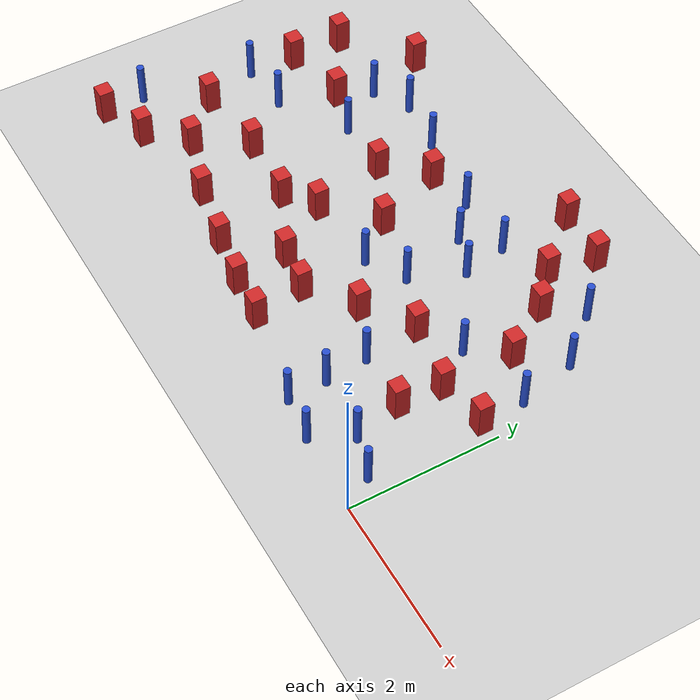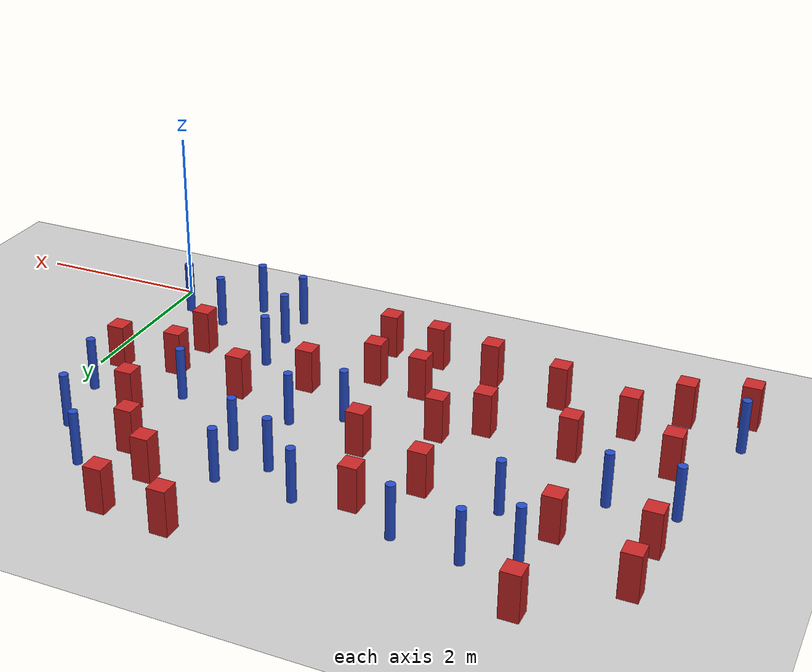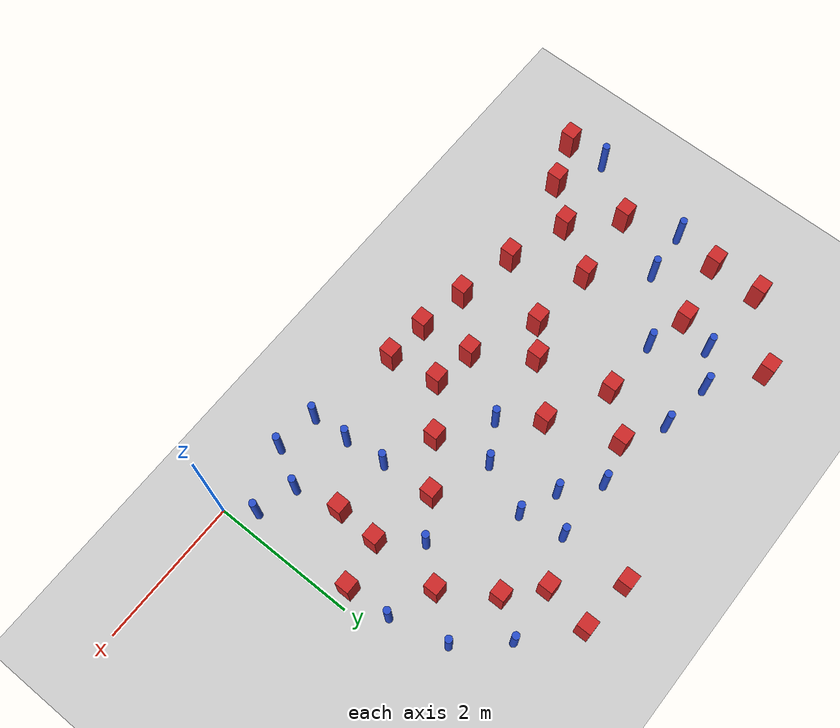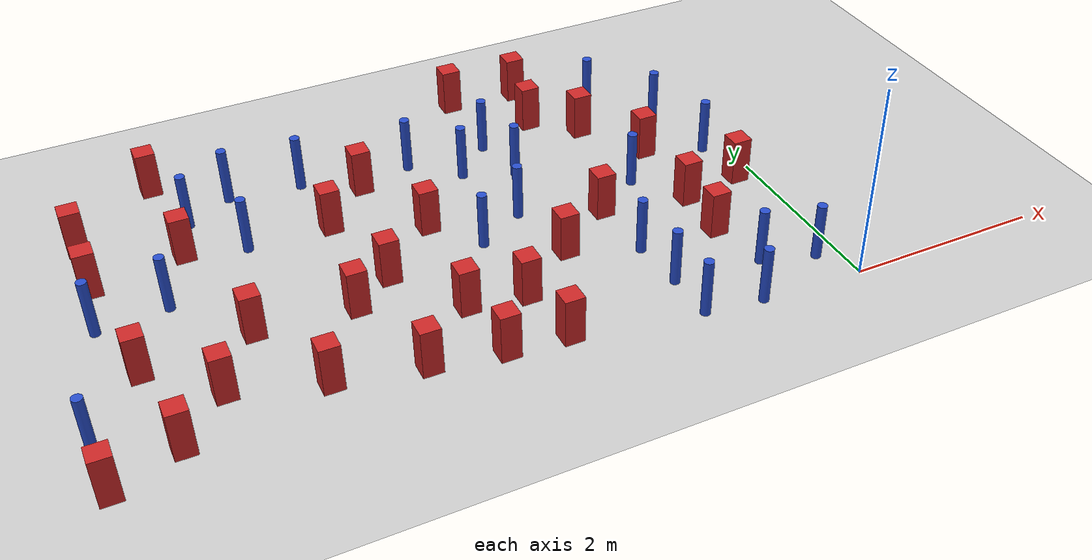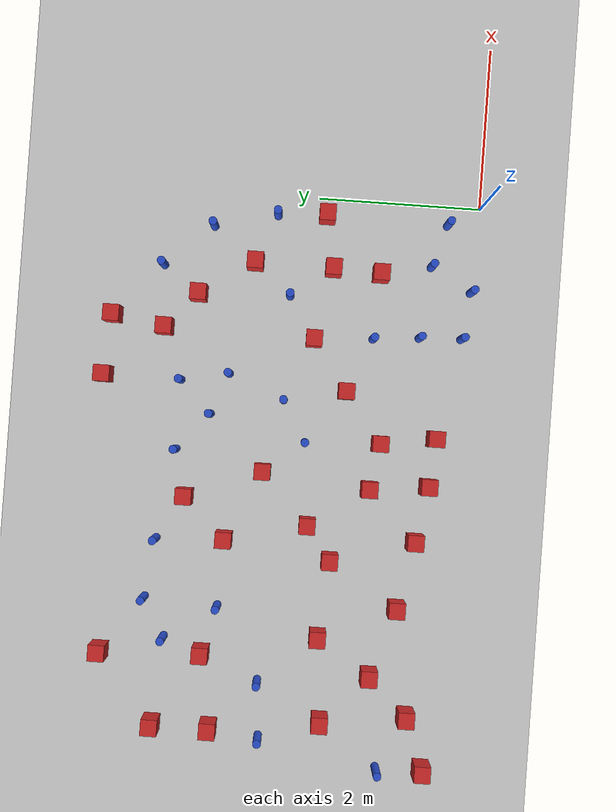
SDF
<sdf version="1.6">
 <world name="default">
  <model name="ground_plane">
   <static>1</static>
   <link name="link">
    <collision name="collision">
     <geometry><plane><normal>0 0 1</normal><size>100 100</size></plane></geometry>
     <surface><friction><ode><mu>100</mu><mu2>50</mu2></ode></friction></surface>
    </collision>
    <visual name="visual">
     <cast_shadows>0</cast_shadows>
     <geometry><plane><normal>0 0 1</normal><size>100 100</size></plane></geometry>
     <material>
      <ambient>1.0 1.0 1.0 1.0</ambient>
      <diffuse>0.8 0.8 0.8 1.0</diffuse>
      <specular>0.01 0.01 0.01 1.000000</specular>
     </material>
    </visual>
   </link>
  </model>
  <model name="pole_obstacle1">
   <static>true</static>
   <pose>-1.04630182989 0.051615101523 7.38925637345e-09 -8.47170692799e-08 1.24976765033e-08 -1.74513093019e-07</pose>
   <link name="link">
    <pose>0 0 0.3 0 -0 0</pose>
    <inertial>
     <mass>1</mass>
     <inertia><ixx>0.145833</ixx><ixy>0</ixy><ixz>0</ixz><iyy>0.145833</iyy><iyz>0</iyz><izz>0.125</izz></inertia>
    </inertial>
    <collision name="collision">
     <geometry><cylinder><radius>0.05</radius><length>.6</length></cylinder></geometry>
    </collision>
    <visual name="visual">
     <geometry><cylinder><radius>0.05</radius><length>.6</length></cylinder></geometry>
     <material>
      <script><name>Gazebo/Blue</name><uri>file://media/materials/scripts/gazebo.material</uri></script>
     </material>
    </visual>
   </link>
  </model>
  <model name="square_post_obstacle2">
   <static>true</static>
   <pose>-6.94276539703 0.270544642527 1.91545236811e-07 -7.35059704564e-06 1.12565212e-07 2.39332434364e-05</pose>
   <link name="link">
    <pose>0 0 0.25 0 -0 0</pose>
    <inertial>
     <mass>100</mass>
     <inertia>
      <ixx>0.166667</ixx>
      <ixy>0</ixy>
      <ixz>0</ixz>
      <iyy>0.166667</iyy>
      <iyz>0</iyz>
      <izz>0.166667</izz>
     </inertia>
    </inertial>
    <collision name="collision"><geometry><box><size>.2 .2 .5</size></box></geometry></collision>
    <visual name="visual">
     <geometry><box><size>.2 .2 .5</size></box></geometry>
     <material>
      <script><name>Gazebo/Red</name><uri>file://media/materials/scripts/gazebo.material</uri></script>
     </material>
    </visual>
   </link>
  </model>
  <model name="square_post_obstacle6">
   <static>true</static>
   <pose>-6.61166386584 3.61637795309 1.91545236811e-07 -7.35059704564e-06 1.12565212e-07 2.39332434364e-05</pose>
   <link name="link">
    <pose>0 0 0.25 0 -0 0</pose>
    <inertial>
     <mass>100</mass>
     <inertia>
      <ixx>0.166667</ixx>
      <ixy>0</ixy>
      <ixz>0</ixz>
      <iyy>0.166667</iyy>
      <iyz>0</iyz>
      <izz>0.166667</izz>
     </inertia>
    </inertial>
    <collision name="collision"><geometry><box><size>.2 .2 .5</size></box></geometry></collision>
    <visual name="visual">
     <geometry><box><size>.2 .2 .5</size></box></geometry>
     <material>
      <script><name>Gazebo/Red</name><uri>file://media/materials/scripts/gazebo.material</uri></script>
     </material>
    </visual>
   </link>
  </model>
  <model name="pole_obstacle9">
   <static>true</static>
   <pose>-4.34505185968 3.72447825318 7.38925637345e-09 -8.47170692798e-08 1.24976764937e-08 -1.74513093023e-07</pose>
   <link name="link">
    <pose>0 0 0.3 0 -0 0</pose>
    <inertial>
     <mass>1</mass>
     <inertia><ixx>0.145833</ixx><ixy>0</ixy><ixz>0</ixz><iyy>0.145833</iyy><iyz>0</iyz><izz>0.125</izz></inertia>
    </inertial>
    <collision name="collision">
     <geometry><cylinder><radius>0.05</radius><length>.6</length></cylinder></geometry>
    </collision>
    <visual name="visual">
     <geometry><cylinder><radius>0.05</radius><length>.6</length></cylinder></geometry>
     <material>
      <script><name>Gazebo/Blue</name><uri>file://media/materials/scripts/gazebo.material</uri></script>
     </material>
    </visual>
   </link>
  </model>
  <model name="pole_obstacle28">
   <static>true</static>
   <pose>-2.37183522931 3.55545364394 7.38925637345e-09 -8.47170692798e-08 1.24976764939e-08 -1.74513093025e-07</pose>
   <link name="link">
    <pose>0 0 0.3 0 -0 0</pose>
    <inertial>
     <mass>1</mass>
     <inertia><ixx>0.145833</ixx><ixy>0</ixy><ixz>0</ixz><iyy>0.145833</iyy><iyz>0</iyz><izz>0.125</izz></inertia>
    </inertial>
    <collision name="collision">
     <geometry><cylinder><radius>0.05</radius><length>.6</length></cylinder></geometry>
    </collision>
    <visual name="visual">
     <geometry><cylinder><radius>0.05</radius><length>.6</length></cylinder></geometry>
     <material>
      <script><name>Gazebo/Blue</name><uri>file://media/materials/scripts/gazebo.material</uri></script>
     </material>
    </visual>
   </link>
  </model>
  <model name="square_post_obstacle19">
   <static>true</static>
   <pose>-4.05131380726 1.87363192231 1.91545236811e-07 -7.35059704564e-06 1.12565212e-07 2.39332434364e-05</pose>
   <link name="link">
    <pose>0 0 0.25 0 -0 0</pose>
    <inertial>
     <mass>100</mass>
     <inertia>
      <ixx>0.166667</ixx>
      <ixy>0</ixy>
      <ixz>0</ixz>
      <iyy>0.166667</iyy>
      <iyz>0</iyz>
      <izz>0.166667</izz>
     </inertia>
    </inertial>
    <collision name="collision"><geometry><box><size>.2 .2 .5</size></box></geometry></collision>
    <visual name="visual">
     <geometry><box><size>.2 .2 .5</size></box></geometry>
     <material>
      <script><name>Gazebo/Red</name><uri>file://media/materials/scripts/gazebo.material</uri></script>
     </material>
    </visual>
   </link>
  </model>
  <model name="pole_obstacle29">
   <static>true</static>
   <pose>-0.762317307906 0.559949095743 7.38925637345e-09 -8.47170692799e-08 1.24976765008e-08 -1.7451309302e-07</pose>
   <link name="link">
    <pose>0 0 0.3 0 -0 0</pose>
    <inertial>
     <mass>1</mass>
     <inertia><ixx>0.145833</ixx><ixy>0</ixy><ixz>0</ixz><iyy>0.145833</iyy><iyz>0</iyz><izz>0.125</izz></inertia>
    </inertial>
    <collision name="collision">
     <geometry><cylinder><radius>0.05</radius><length>.6</length></cylinder></geometry>
    </collision>
    <visual name="visual">
     <geometry><cylinder><radius>0.05</radius><length>.6</length></cylinder></geometry>
     <material>
      <script><name>Gazebo/Blue</name><uri>file://media/materials/scripts/gazebo.material</uri></script>
     </material>
    </visual>
   </link>
  </model>
  <model name="square_post_obstacle35">
   <static>true</static>
   <pose>-4.16310749638 0.540213693424 1.91545236811e-07 -7.35059704564e-06 1.12565212e-07 2.39332434364e-05</pose>
   <link name="link">
    <pose>0 0 0.25 0 -0 0</pose>
    <inertial>
     <mass>100</mass>
     <inertia>
      <ixx>0.166667</ixx>
      <ixy>0</ixy>
      <ixz>0</ixz>
      <iyy>0.166667</iyy>
      <iyz>0</iyz>
      <izz>0.166667</izz>
     </inertia>
    </inertial>
    <collision name="collision"><geometry><box><size>.2 .2 .5</size></box></geometry></collision>
    <visual name="visual">
     <geometry><box><size>.2 .2 .5</size></box></geometry>
     <material>
      <script><name>Gazebo/Red</name><uri>file://media/materials/scripts/gazebo.material</uri></script>
     </material>
    </visual>
   </link>
  </model>
  <model name="pole_obstacle50">
   <static>true</static>
   <pose>-6.69125234079 2.29479315178 7.38925637345e-09 -8.47170692798e-08 1.24976764937e-08 -1.74513093023e-07</pose>
   <link name="link">
    <pose>0 0 0.3 0 -0 0</pose>
    <inertial>
     <mass>1</mass>
     <inertia><ixx>0.145833</ixx><ixy>0</ixy><ixz>0</ixz><iyy>0.145833</iyy><iyz>0</iyz><izz>0.125</izz></inertia>
    </inertial>
    <collision name="collision">
     <geometry><cylinder><radius>0.05</radius><length>.6</length></cylinder></geometry>
    </collision>
    <visual name="visual">
     <geometry><cylinder><radius>0.05</radius><length>.6</length></cylinder></geometry>
     <material>
      <script><name>Gazebo/Blue</name><uri>file://media/materials/scripts/gazebo.material</uri></script>
     </material>
    </visual>
   </link>
  </model>
  <model name="pole_obstacle51">
   <static>true</static>
   <pose>-1.7030006823 1.21912640064 7.38925637345e-09 -8.471706928e-08 1.24976765079e-08 -1.74513093017e-07</pose>
   <link name="link">
    <pose>0 0 0.3 0 -0 0</pose>
    <inertial>
     <mass>1</mass>
     <inertia><ixx>0.145833</ixx><ixy>0</ixy><ixz>0</ixz><iyy>0.145833</iyy><iyz>0</iyz><izz>0.125</izz></inertia>
    </inertial>
    <collision name="collision">
     <geometry><cylinder><radius>0.05</radius><length>.6</length></cylinder></geometry>
    </collision>
    <visual name="visual">
     <geometry><cylinder><radius>0.05</radius><length>.6</length></cylinder></geometry>
     <material>
      <script><name>Gazebo/Blue</name><uri>file://media/materials/scripts/gazebo.material</uri></script>
     </material>
    </visual>
   </link>
  </model>
  <model name="pole_obstacle52">
   <static>true</static>
   <pose>-2.76708867632 3.16369760751 7.38925637345e-09 -8.47170692798e-08 1.24976764939e-08 -1.74513093025e-07</pose>
   <link name="link">
    <pose>0 0 0.3 0 -0 0</pose>
    <inertial>
     <mass>1</mass>
     <inertia><ixx>0.145833</ixx><ixy>0</ixy><ixz>0</ixz><iyy>0.145833</iyy><iyz>0</iyz><izz>0.125</izz></inertia>
    </inertial>
    <collision name="collision">
     <geometry><cylinder><radius>0.05</radius><length>.6</length></cylinder></geometry>
    </collision>
    <visual name="visual">
     <geometry><cylinder><radius>0.05</radius><length>.6</length></cylinder></geometry>
     <material>
      <script><name>Gazebo/Blue</name><uri>file://media/materials/scripts/gazebo.material</uri></script>
     </material>
    </visual>
   </link>
  </model>
  <model name="square_post_obstacle42">
   <static>true</static>
   <pose>-5.75947830605 4.31798702861 1.91545236811e-07 -7.35059704564e-06 1.12565212e-07 2.39332434364e-05</pose>
   <link name="link">
    <pose>0 0 0.25 0 -0 0</pose>
    <inertial>
     <mass>100</mass>
     <inertia>
      <ixx>0.166667</ixx>
      <ixy>0</ixy>
      <ixz>0</ixz>
      <iyy>0.166667</iyy>
      <iyz>0</iyz>
      <izz>0.166667</izz>
     </inertia>
    </inertial>
    <collision name="collision"><geometry><box><size>.2 .2 .5</size></box></geometry></collision>
    <visual name="visual">
     <geometry><box><size>.2 .2 .5</size></box></geometry>
     <material>
      <script><name>Gazebo/Red</name><uri>file://media/materials/scripts/gazebo.material</uri></script>
     </material>
    </visual>
   </link>
  </model>
  <model name="square_post_obstacle44">
   <static>true</static>
   <pose>-1.62302480021 4.43921737696 1.91545236811e-07 -7.35059704564e-06 1.12565212e-07 2.39332434364e-05</pose>
   <link name="link">
    <pose>0 0 0.25 0 -0 0</pose>
    <inertial>
     <mass>100</mass>
     <inertia>
      <ixx>0.166667</ixx>
      <ixy>0</ixy>
      <ixz>0</ixz>
      <iyy>0.166667</iyy>
      <iyz>0</iyz>
      <izz>0.166667</izz>
     </inertia>
    </inertial>
    <collision name="collision"><geometry><box><size>.2 .2 .5</size></box></geometry></collision>
    <visual name="visual">
     <geometry><box><size>.2 .2 .5</size></box></geometry>
     <material>
      <script><name>Gazebo/Red</name><uri>file://media/materials/scripts/gazebo.material</uri></script>
     </material>
    </visual>
   </link>
  </model>
  <model name="square_post_obstacle52">
   <static>true</static>
   <pose>-2.88350521009 0.371397259413 1.91545236811e-07 -7.35059704564e-06 1.12565212e-07 2.39332434364e-05</pose>
   <link name="link">
    <pose>0 0 0.25 0 -0 0</pose>
    <inertial>
     <mass>100</mass>
     <inertia>
      <ixx>0.166667</ixx>
      <ixy>0</ixy>
      <ixz>0</ixz>
      <iyy>0.166667</iyy>
      <iyz>0</iyz>
      <izz>0.166667</izz>
     </inertia>
    </inertial>
    <collision name="collision"><geometry><box><size>.2 .2 .5</size></box></geometry></collision>
    <visual name="visual">
     <geometry><box><size>.2 .2 .5</size></box></geometry>
     <material>
      <script><name>Gazebo/Red</name><uri>file://media/materials/scripts/gazebo.material</uri></script>
     </material>
    </visual>
   </link>
  </model>
  <model name="square_post_obstacle56">
   <static>true</static>
   <pose>-6.44094989483 1.55565825258 1.91545236811e-07 -7.35059704564e-06 1.12565212e-07 2.39332434364e-05</pose>
   <link name="link">
    <pose>0 0 0.25 0 -0 0</pose>
    <inertial>
     <mass>100</mass>
     <inertia>
      <ixx>0.166667</ixx>
      <ixy>0</ixy>
      <ixz>0</ixz>
      <iyy>0.166667</iyy>
      <iyz>0</iyz>
      <izz>0.166667</izz>
     </inertia>
    </inertial>
    <collision name="collision"><geometry><box><size>.2 .2 .5</size></box></geometry></collision>
    <visual name="visual">
     <geometry><box><size>.2 .2 .5</size></box></geometry>
     <material>
      <script><name>Gazebo/Red</name><uri>file://media/materials/scripts/gazebo.material</uri></script>
     </material>
    </visual>
   </link>
  </model>
  <model name="pole_obstacle70">
   <static>true</static>
   <pose>-6.00756148825 2.3520266166 7.38925637345e-09 -8.47170692798e-08 1.24976764937e-08 -1.74513093023e-07</pose>
   <link name="link">
    <pose>0 0 0.3 0 -0 0</pose>
    <inertial>
     <mass>1</mass>
     <inertia><ixx>0.145833</ixx><ixy>0</ixy><ixz>0</ixz><iyy>0.145833</iyy><iyz>0</iyz><izz>0.125</izz></inertia>
    </inertial>
    <collision name="collision">
     <geometry><cylinder><radius>0.05</radius><length>.6</length></cylinder></geometry>
    </collision>
    <visual name="visual">
     <geometry><cylinder><radius>0.05</radius><length>.6</length></cylinder></geometry>
     <material>
      <script><name>Gazebo/Blue</name><uri>file://media/materials/scripts/gazebo.material</uri></script>
     </material>
    </visual>
   </link>
  </model>
  <model name="pole_obstacle80">
   <static>true</static>
   <pose>-3.2295053946 3.55683555406 7.38925637345e-09 -8.471706928e-08 1.24976765098e-08 -1.74513093016e-07</pose>
   <link name="link">
    <pose>0 0 0.3 0 -0 0</pose>
    <inertial>
     <mass>1</mass>
     <inertia><ixx>0.145833</ixx><ixy>0</ixy><ixz>0</ixz><iyy>0.145833</iyy><iyz>0</iyz><izz>0.125</izz></inertia>
    </inertial>
    <collision name="collision">
     <geometry><cylinder><radius>0.05</radius><length>.6</length></cylinder></geometry>
    </collision>
    <visual name="visual">
     <geometry><cylinder><radius>0.05</radius><length>.6</length></cylinder></geometry>
     <material>
      <script><name>Gazebo/Blue</name><uri>file://media/materials/scripts/gazebo.material</uri></script>
     </material>
    </visual>
   </link>
  </model>
  <model name="square_post_obstacle85">
   <static>true</static>
   <pose>-5.84357785571 0.991679537354 1.91545236811e-07 -7.35059704564e-06 1.12565212e-07 2.39332434364e-05</pose>
   <link name="link">
    <pose>0 0 0.25 0 -0 0</pose>
    <inertial>
     <mass>100</mass>
     <inertia>
      <ixx>0.166667</ixx>
      <ixy>0</ixy>
      <ixz>0</ixz>
      <iyy>0.166667</iyy>
      <iyz>0</iyz>
      <izz>0.166667</izz>
     </inertia>
    </inertial>
    <collision name="collision"><geometry><box><size>.2 .2 .5</size></box></geometry></collision>
    <visual name="visual">
     <geometry><box><size>.2 .2 .5</size></box></geometry>
     <material>
      <script><name>Gazebo/Red</name><uri>file://media/materials/scripts/gazebo.material</uri></script>
     </material>
    </visual>
   </link>
  </model>
  <model name="square_post_obstacle89">
   <static>true</static>
   <pose>-2.36697482412 4.50240781914 1.91545236811e-07 -7.35059704564e-06 1.12565212e-07 2.39332434364e-05</pose>
   <link name="link">
    <pose>0 0 0.25 0 -0 0</pose>
    <inertial>
     <mass>100</mass>
     <inertia>
      <ixx>0.166667</ixx>
      <ixy>0</ixy>
      <ixz>0</ixz>
      <iyy>0.166667</iyy>
      <iyz>0</iyz>
      <izz>0.166667</izz>
     </inertia>
    </inertial>
    <collision name="collision"><geometry><box><size>.2 .2 .5</size></box></geometry></collision>
    <visual name="visual">
     <geometry><box><size>.2 .2 .5</size></box></geometry>
     <material>
      <script><name>Gazebo/Red</name><uri>file://media/materials/scripts/gazebo.material</uri></script>
     </material>
    </visual>
   </link>
  </model>
  <model name="square_post_obstacle95">
   <static>true</static>
   <pose>-1.29212651685 3.40177244683 1.91545236811e-07 -7.35059704564e-06 1.12565212e-07 2.39332434364e-05</pose>
   <link name="link">
    <pose>0 0 0.25 0 -0 0</pose>
    <inertial>
     <mass>100</mass>
     <inertia>
      <ixx>0.166667</ixx>
      <ixy>0</ixy>
      <ixz>0</ixz>
      <iyy>0.166667</iyy>
      <iyz>0</iyz>
      <izz>0.166667</izz>
     </inertia>
    </inertial>
    <collision name="collision"><geometry><box><size>.2 .2 .5</size></box></geometry></collision>
    <visual name="visual">
     <geometry><box><size>.2 .2 .5</size></box></geometry>
     <material>
      <script><name>Gazebo/Red</name><uri>file://media/materials/scripts/gazebo.material</uri></script>
     </material>
    </visual>
   </link>
  </model>
  <model name="square_post_obstacle100">
   <static>true</static>
   <pose>-2.98975343674 1.04892976474 1.91545236811e-07 -7.35059704564e-06 1.12565212e-07 2.39332434364e-05</pose>
   <link name="link">
    <pose>0 0 0.25 0 -0 0</pose>
    <inertial>
     <mass>100</mass>
     <inertia>
      <ixx>0.166667</ixx>
      <ixy>0</ixy>
      <ixz>0</ixz>
      <iyy>0.166667</iyy>
      <iyz>0</iyz>
      <izz>0.166667</izz>
     </inertia>
    </inertial>
    <collision name="collision"><geometry><box><size>.2 .2 .5</size></box></geometry></collision>
    <visual name="visual">
     <geometry><box><size>.2 .2 .5</size></box></geometry>
     <material>
      <script><name>Gazebo/Red</name><uri>file://media/materials/scripts/gazebo.material</uri></script>
     </material>
    </visual>
   </link>
  </model>
  <model name="pole_obstacle106">
   <static>true</static>
   <pose>-1.62884620674 0.129775238204 7.38925637345e-09 -8.471706928e-08 1.24976765118e-08 -1.74513093013e-07</pose>
   <link name="link">
    <pose>0 0 0.3 0 -0 0</pose>
    <inertial>
     <mass>1</mass>
     <inertia><ixx>0.145833</ixx><ixy>0</ixy><ixz>0</ixz><iyy>0.145833</iyy><iyz>0</iyz><izz>0.125</izz></inertia>
    </inertial>
    <collision name="collision">
     <geometry><cylinder><radius>0.05</radius><length>.6</length></cylinder></geometry>
    </collision>
    <visual name="visual">
     <geometry><cylinder><radius>0.05</radius><length>.6</length></cylinder></geometry>
     <material>
      <script><name>Gazebo/Blue</name><uri>file://media/materials/scripts/gazebo.material</uri></script>
     </material>
    </visual>
   </link>
  </model>
  <model name="pole_obstacle107">
   <static>true</static>
   <pose>-5.12203296914 2.90994777958 7.38925637345e-09 -8.47170692798e-08 1.24976764937e-08 -1.74513093023e-07</pose>
   <link name="link">
    <pose>0 0 0.3 0 -0 0</pose>
    <inertial>
     <mass>1</mass>
     <inertia><ixx>0.145833</ixx><ixy>0</ixy><ixz>0</ixz><iyy>0.145833</iyy><iyz>0</iyz><izz>0.125</izz></inertia>
    </inertial>
    <collision name="collision">
     <geometry><cylinder><radius>0.05</radius><length>.6</length></cylinder></geometry>
    </collision>
    <visual name="visual">
     <geometry><cylinder><radius>0.05</radius><length>.6</length></cylinder></geometry>
     <material>
      <script><name>Gazebo/Blue</name><uri>file://media/materials/scripts/gazebo.material</uri></script>
     </material>
    </visual>
   </link>
  </model>
  <model name="square_post_obstacle104">
   <static>true</static>
   <pose>-0.218262979756 1.88934912733 1.91545236811e-07 -7.35059704564e-06 1.12565212e-07 2.39332434364e-05</pose>
   <link name="link">
    <pose>0 0 0.25 0 -0 0</pose>
    <inertial>
     <mass>100</mass>
     <inertia>
      <ixx>0.166667</ixx>
      <ixy>0</ixy>
      <ixz>0</ixz>
      <iyy>0.166667</iyy>
      <iyz>0</iyz>
      <izz>0.166667</izz>
     </inertia>
    </inertial>
    <collision name="collision"><geometry><box><size>.2 .2 .5</size></box></geometry></collision>
    <visual name="visual">
     <geometry><box><size>.2 .2 .5</size></box></geometry>
     <material>
      <script><name>Gazebo/Red</name><uri>file://media/materials/scripts/gazebo.material</uri></script>
     </material>
    </visual>
   </link>
  </model>
  <model name="square_post_obstacle108">
   <static>true</static>
   <pose>-1.73175008908 3.79279733086 1.91545236811e-07 -7.35059704564e-06 1.12565212e-07 2.39332434364e-05</pose>
   <link name="link">
    <pose>0 0 0.25 0 -0 0</pose>
    <inertial>
     <mass>100</mass>
     <inertia>
      <ixx>0.166667</ixx>
      <ixy>0</ixy>
      <ixz>0</ixz>
      <iyy>0.166667</iyy>
      <iyz>0</iyz>
      <izz>0.166667</izz>
     </inertia>
    </inertial>
    <collision name="collision"><geometry><box><size>.2 .2 .5</size></box></geometry></collision>
    <visual name="visual">
     <geometry><box><size>.2 .2 .5</size></box></geometry>
     <material>
      <script><name>Gazebo/Red</name><uri>file://media/materials/scripts/gazebo.material</uri></script>
     </material>
    </visual>
   </link>
  </model>
  <model name="square_post_obstacle111">
   <static>true</static>
   <pose>-6.30784242431 0.508064076074 1.91545236811e-07 -7.35059704564e-06 1.12565212e-07 2.39332434364e-05</pose>
   <link name="link">
    <pose>0 0 0.25 0 -0 0</pose>
    <inertial>
     <mass>100</mass>
     <inertia>
      <ixx>0.166667</ixx>
      <ixy>0</ixy>
      <ixz>0</ixz>
      <iyy>0.166667</iyy>
      <iyz>0</iyz>
      <izz>0.166667</izz>
     </inertia>
    </inertial>
    <collision name="collision"><geometry><box><size>.2 .2 .5</size></box></geometry></collision>
    <visual name="visual">
     <geometry><box><size>.2 .2 .5</size></box></geometry>
     <material>
      <script><name>Gazebo/Red</name><uri>file://media/materials/scripts/gazebo.material</uri></script>
     </material>
    </visual>
   </link>
  </model>
  <model name="pole_obstacle116">
   <static>true</static>
   <pose>-0.250553725688 2.49704803845 7.38925637345e-09 -8.471706928e-08 1.24976765139e-08 -1.74513093014e-07</pose>
   <link name="link">
    <pose>0 0 0.3 0 -0 0</pose>
    <inertial>
     <mass>1</mass>
     <inertia><ixx>0.145833</ixx><ixy>0</ixy><ixz>0</ixz><iyy>0.145833</iyy><iyz>0</iyz><izz>0.125</izz></inertia>
    </inertial>
    <collision name="collision">
     <geometry><cylinder><radius>0.05</radius><length>.6</length></cylinder></geometry>
    </collision>
    <visual name="visual">
     <geometry><cylinder><radius>0.05</radius><length>.6</length></cylinder></geometry>
     <material>
      <script><name>Gazebo/Blue</name><uri>file://media/materials/scripts/gazebo.material</uri></script>
     </material>
    </visual>
   </link>
  </model>
  <model name="square_post_obstacle116">
   <static>true</static>
   <pose>-1.75706093148 1.94662354061 1.91545236811e-07 -7.35059704564e-06 1.12565212e-07 2.39332434364e-05</pose>
   <link name="link">
    <pose>0 0 0.25 0 -0 0</pose>
    <inertial>
     <mass>100</mass>
     <inertia>
      <ixx>0.166667</ixx>
      <ixy>0</ixy>
      <ixz>0</ixz>
      <iyy>0.166667</iyy>
      <iyz>0</iyz>
      <izz>0.166667</izz>
     </inertia>
    </inertial>
    <collision name="collision"><geometry><box><size>.2 .2 .5</size></box></geometry></collision>
    <visual name="visual">
     <geometry><box><size>.2 .2 .5</size></box></geometry>
     <material>
      <script><name>Gazebo/Red</name><uri>file://media/materials/scripts/gazebo.material</uri></script>
     </material>
    </visual>
   </link>
  </model>
  <model name="square_post_obstacle119">
   <static>true</static>
   <pose>-4.46557902117 1.56936499345 1.91545236811e-07 -7.35059704564e-06 1.12565212e-07 2.39332434364e-05</pose>
   <link name="link">
    <pose>0 0 0.25 0 -0 0</pose>
    <inertial>
     <mass>100</mass>
     <inertia>
      <ixx>0.166667</ixx>
      <ixy>0</ixy>
      <ixz>0</ixz>
      <iyy>0.166667</iyy>
      <iyz>0</iyz>
      <izz>0.166667</izz>
     </inertia>
    </inertial>
    <collision name="collision"><geometry><box><size>.2 .2 .5</size></box></geometry></collision>
    <visual name="visual">
     <geometry><box><size>.2 .2 .5</size></box></geometry>
     <material>
      <script><name>Gazebo/Red</name><uri>file://media/materials/scripts/gazebo.material</uri></script>
     </material>
    </visual>
   </link>
  </model>
  <model name="pole_obstacle123">
   <static>true</static>
   <pose>-0.231956713623 0.392224656898 7.38925637345e-09 -8.47170692799e-08 1.2497676501e-08 -1.74513093019e-07</pose>
   <link name="link">
    <pose>0 0 0.3 0 -0 0</pose>
    <inertial>
     <mass>1</mass>
     <inertia><ixx>0.145833</ixx><ixy>0</ixy><ixz>0</ixz><iyy>0.145833</iyy><iyz>0</iyz><izz>0.125</izz></inertia>
    </inertial>
    <collision name="collision">
     <geometry><cylinder><radius>0.05</radius><length>.6</length></cylinder></geometry>
    </collision>
    <visual name="visual">
     <geometry><cylinder><radius>0.05</radius><length>.6</length></cylinder></geometry>
     <material>
      <script><name>Gazebo/Blue</name><uri>file://media/materials/scripts/gazebo.material</uri></script>
     </material>
    </visual>
   </link>
  </model>
  <model name="square_post_obstacle123">
   <static>true</static>
   <pose>-4.99594292737 0.711426656936 1.91545236811e-07 -7.35059704564e-06 1.12565212e-07 2.39332434364e-05</pose>
   <link name="link">
    <pose>0 0 0.25 0 -0 0</pose>
    <inertial>
     <mass>100</mass>
     <inertia>
      <ixx>0.166667</ixx>
      <ixy>0</ixy>
      <ixz>0</ixz>
      <iyy>0.166667</iyy>
      <iyz>0</iyz>
      <izz>0.166667</izz>
     </inertia>
    </inertial>
    <collision name="collision"><geometry><box><size>.2 .2 .5</size></box></geometry></collision>
    <visual name="visual">
     <geometry><box><size>.2 .2 .5</size></box></geometry>
     <material>
      <script><name>Gazebo/Red</name><uri>file://media/materials/scripts/gazebo.material</uri></script>
     </material>
    </visual>
   </link>
  </model>
  <model name="pole_obstacle131">
   <static>true</static>
   <pose>-1.24196176116 2.27932700327 7.38925637345e-09 -8.47170692799e-08 1.24976765053e-08 -1.74513093017e-07</pose>
   <link name="link">
    <pose>0 0 0.3 0 -0 0</pose>
    <inertial>
     <mass>1</mass>
     <inertia><ixx>0.145833</ixx><ixy>0</ixy><ixz>0</ixz><iyy>0.145833</iyy><iyz>0</iyz><izz>0.125</izz></inertia>
    </inertial>
    <collision name="collision">
     <geometry><cylinder><radius>0.05</radius><length>.6</length></cylinder></geometry>
    </collision>
    <visual name="visual">
     <geometry><cylinder><radius>0.05</radius><length>.6</length></cylinder></geometry>
     <material>
      <script><name>Gazebo/Blue</name><uri>file://media/materials/scripts/gazebo.material</uri></script>
     </material>
    </visual>
   </link>
  </model>
  <model name="square_post_obstacle133">
   <static>true</static>
   <pose>-3.43023822081 2.4659743951 1.91545236811e-07 -7.35059704564e-06 1.12565212e-07 2.39332434364e-05</pose>
   <link name="link">
    <pose>0 0 0.25 0 -0 0</pose>
    <inertial>
     <mass>100</mass>
     <inertia>
      <ixx>0.166667</ixx>
      <ixy>0</ixy>
      <ixz>0</ixz>
      <iyy>0.166667</iyy>
      <iyz>0</iyz>
      <izz>0.166667</izz>
     </inertia>
    </inertial>
    <collision name="collision"><geometry><box><size>.2 .2 .5</size></box></geometry></collision>
    <visual name="visual">
     <geometry><box><size>.2 .2 .5</size></box></geometry>
     <material>
      <script><name>Gazebo/Red</name><uri>file://media/materials/scripts/gazebo.material</uri></script>
     </material>
    </visual>
   </link>
  </model>
  <model name="pole_obstacle140">
   <static>true</static>
   <pose>-0.961970307962 3.86276042457 7.38925637345e-09 -8.47170692799e-08 1.24976765063e-08 -1.74513093018e-07</pose>
   <link name="link">
    <pose>0 0 0.3 0 -0 0</pose>
    <inertial>
     <mass>1</mass>
     <inertia><ixx>0.145833</ixx><ixy>0</ixy><ixz>0</ixz><iyy>0.145833</iyy><iyz>0</iyz><izz>0.125</izz></inertia>
    </inertial>
    <collision name="collision">
     <geometry><cylinder><radius>0.05</radius><length>.6</length></cylinder></geometry>
    </collision>
    <visual name="visual">
     <geometry><cylinder><radius>0.05</radius><length>.6</length></cylinder></geometry>
     <material>
      <script><name>Gazebo/Blue</name><uri>file://media/materials/scripts/gazebo.material</uri></script>
     </material>
    </visual>
   </link>
  </model>
  <model name="pole_obstacle157">
   <static>true</static>
   <pose>-5.07594089207 3.81675767567 7.38925637345e-09 -8.47170692798e-08 1.24976764937e-08 -1.74513093023e-07</pose>
   <link name="link">
    <pose>0 0 0.3 0 -0 0</pose>
    <inertial>
     <mass>1</mass>
     <inertia><ixx>0.145833</ixx><ixy>0</ixy><ixz>0</ixz><iyy>0.145833</iyy><iyz>0</iyz><izz>0.125</izz></inertia>
    </inertial>
    <collision name="collision">
     <geometry><cylinder><radius>0.05</radius><length>.6</length></cylinder></geometry>
    </collision>
    <visual name="visual">
     <geometry><cylinder><radius>0.05</radius><length>.6</length></cylinder></geometry>
     <material>
      <script><name>Gazebo/Blue</name><uri>file://media/materials/scripts/gazebo.material</uri></script>
     </material>
    </visual>
   </link>
  </model>
  <model name="square_post_obstacle154">
   <static>true</static>
   <pose>-0.898571257009 1.18044336672 1.91545236811e-07 -7.35059704564e-06 1.12565212e-07 2.39332434364e-05</pose>
   <link name="link">
    <pose>0 0 0.25 0 -0 0</pose>
    <inertial>
     <mass>100</mass>
     <inertia>
      <ixx>0.166667</ixx>
      <ixy>0</ixy>
      <ixz>0</ixz>
      <iyy>0.166667</iyy>
      <iyz>0</iyz>
      <izz>0.166667</izz>
     </inertia>
    </inertial>
    <collision name="collision"><geometry><box><size>.2 .2 .5</size></box></geometry></collision>
    <visual name="visual">
     <geometry><box><size>.2 .2 .5</size></box></geometry>
     <material>
      <script><name>Gazebo/Red</name><uri>file://media/materials/scripts/gazebo.material</uri></script>
     </material>
    </visual>
   </link>
  </model>
  <model name="square_post_obstacle155">
   <static>true</static>
   <pose>-0.859307264421 2.7324088987 1.91545236811e-07 -7.35059704564e-06 1.12565212e-07 2.39332434364e-05</pose>
   <link name="link">
    <pose>0 0 0.25 0 -0 0</pose>
    <inertial>
     <mass>100</mass>
     <inertia>
      <ixx>0.166667</ixx>
      <ixy>0</ixy>
      <ixz>0</ixz>
      <iyy>0.166667</iyy>
      <iyz>0</iyz>
      <izz>0.166667</izz>
     </inertia>
    </inertial>
    <collision name="collision"><geometry><box><size>.2 .2 .5</size></box></geometry></collision>
    <visual name="visual">
     <geometry><box><size>.2 .2 .5</size></box></geometry>
     <material>
      <script><name>Gazebo/Red</name><uri>file://media/materials/scripts/gazebo.material</uri></script>
     </material>
    </visual>
   </link>
  </model>
  <model name="pole_obstacle170">
   <static>true</static>
   <pose>-6.97745602016 0.822523043527 7.38925637345e-09 -8.47170692799e-08 1.24976765038e-08 -1.74513093018e-07</pose>
   <link name="link">
    <pose>0 0 0.3 0 -0 0</pose>
    <inertial>
     <mass>1</mass>
     <inertia><ixx>0.145833</ixx><ixy>0</ixy><ixz>0</ixz><iyy>0.145833</iyy><iyz>0</iyz><izz>0.125</izz></inertia>
    </inertial>
    <collision name="collision">
     <geometry><cylinder><radius>0.05</radius><length>.6</length></cylinder></geometry>
    </collision>
    <visual name="visual">
     <geometry><cylinder><radius>0.05</radius><length>.6</length></cylinder></geometry>
     <material>
      <script><name>Gazebo/Blue</name><uri>file://media/materials/scripts/gazebo.material</uri></script>
     </material>
    </visual>
   </link>
  </model>
  <model name="pole_obstacle174">
   <static>true</static>
   <pose>-2.53503560494 2.26921923058 7.38925637345e-09 -8.47170692798e-08 1.24976764939e-08 -1.74513093025e-07</pose>
   <link name="link">
    <pose>0 0 0.3 0 -0 0</pose>
    <inertial>
     <mass>1</mass>
     <inertia><ixx>0.145833</ixx><ixy>0</ixy><ixz>0</ixz><iyy>0.145833</iyy><iyz>0</iyz><izz>0.125</izz></inertia>
    </inertial>
    <collision name="collision">
     <geometry><cylinder><radius>0.05</radius><length>.6</length></cylinder></geometry>
    </collision>
    <visual name="visual">
     <geometry><cylinder><radius>0.05</radius><length>.6</length></cylinder></geometry>
     <material>
      <script><name>Gazebo/Blue</name><uri>file://media/materials/scripts/gazebo.material</uri></script>
     </material>
    </visual>
   </link>
  </model>
  <model name="square_post_obstacle172">
   <static>true</static>
   <pose>-3.55770509033 1.14337831809 1.91545236811e-07 -7.35059704564e-06 1.12565212e-07 2.39332434364e-05</pose>
   <link name="link">
    <pose>0 0 0.25 0 -0 0</pose>
    <inertial>
     <mass>100</mass>
     <inertia>
      <ixx>0.166667</ixx>
      <ixy>0</ixy>
      <ixz>0</ixz>
      <iyy>0.166667</iyy>
      <iyz>0</iyz>
      <izz>0.166667</izz>
     </inertia>
    </inertial>
    <collision name="collision"><geometry><box><size>.2 .2 .5</size></box></geometry></collision>
    <visual name="visual">
     <geometry><box><size>.2 .2 .5</size></box></geometry>
     <material>
      <script><name>Gazebo/Red</name><uri>file://media/materials/scripts/gazebo.material</uri></script>
     </material>
    </visual>
   </link>
  </model>
  <model name="pole_obstacle178">
   <static>true</static>
   <pose>-2.25515517741 2.96220189587 7.38925637345e-09 -8.47170692798e-08 1.24976764939e-08 -1.74513093025e-07</pose>
   <link name="link">
    <pose>0 0 0.3 0 -0 0</pose>
    <inertial>
     <mass>1</mass>
     <inertia><ixx>0.145833</ixx><ixy>0</ixy><ixz>0</ixz><iyy>0.145833</iyy><iyz>0</iyz><izz>0.125</izz></inertia>
    </inertial>
    <collision name="collision">
     <geometry><cylinder><radius>0.05</radius><length>.6</length></cylinder></geometry>
    </collision>
    <visual name="visual">
     <geometry><cylinder><radius>0.05</radius><length>.6</length></cylinder></geometry>
     <material>
      <script><name>Gazebo/Blue</name><uri>file://media/materials/scripts/gazebo.material</uri></script>
     </material>
    </visual>
   </link>
  </model>
  <model name="square_post_obstacle175">
   <static>true</static>
   <pose>-5.70594965453 3.06740156743 1.91545236811e-07 -7.35059704564e-06 1.12565212e-07 2.39332434364e-05</pose>
   <link name="link">
    <pose>0 0 0.25 0 -0 0</pose>
    <inertial>
     <mass>100</mass>
     <inertia>
      <ixx>0.166667</ixx>
      <ixy>0</ixy>
      <ixz>0</ixz>
      <iyy>0.166667</iyy>
      <iyz>0</iyz>
      <izz>0.166667</izz>
     </inertia>
    </inertial>
    <collision name="collision"><geometry><box><size>.2 .2 .5</size></box></geometry></collision>
    <visual name="visual">
     <geometry><box><size>.2 .2 .5</size></box></geometry>
     <material>
      <script><name>Gazebo/Red</name><uri>file://media/materials/scripts/gazebo.material</uri></script>
     </material>
    </visual>
   </link>
  </model>
  <model name="square_post_obstacle187">
   <static>true</static>
   <pose>-3.79685514548 3.40326851612 1.91545236811e-07 -7.35059704564e-06 1.12565212e-07 2.39332434364e-05</pose>
   <link name="link">
    <pose>0 0 0.25 0 -0 0</pose>
    <inertial>
     <mass>100</mass>
     <inertia>
      <ixx>0.166667</ixx>
      <ixy>0</ixy>
      <ixz>0</ixz>
      <iyy>0.166667</iyy>
      <iyz>0</iyz>
      <izz>0.166667</izz>
     </inertia>
    </inertial>
    <collision name="collision"><geometry><box><size>.2 .2 .5</size></box></geometry></collision>
    <visual name="visual">
     <geometry><box><size>.2 .2 .5</size></box></geometry>
     <material>
      <script><name>Gazebo/Red</name><uri>file://media/materials/scripts/gazebo.material</uri></script>
     </material>
    </visual>
   </link>
  </model>
  <model name="square_post_obstacle191">
   <static>true</static>
   <pose>-4.29189837776 2.88220385016 1.91545236811e-07 -7.35059704564e-06 1.12565212e-07 2.39332434364e-05</pose>
   <link name="link">
    <pose>0 0 0.25 0 -0 0</pose>
    <inertial>
     <mass>100</mass>
     <inertia>
      <ixx>0.166667</ixx>
      <ixy>0</ixy>
      <ixz>0</ixz>
      <iyy>0.166667</iyy>
      <iyz>0</iyz>
      <izz>0.166667</izz>
     </inertia>
    </inertial>
    <collision name="collision"><geometry><box><size>.2 .2 .5</size></box></geometry></collision>
    <visual name="visual">
     <geometry><box><size>.2 .2 .5</size></box></geometry>
     <material>
      <script><name>Gazebo/Red</name><uri>file://media/materials/scripts/gazebo.material</uri></script>
     </material>
    </visual>
   </link>
  </model>
  <model name="square_post_obstacle192">
   <static>true</static>
   <pose>-2.37615397598 1.50755657162 1.91545236811e-07 -7.35059704564e-06 1.12565212e-07 2.39332434364e-05</pose>
   <link name="link">
    <pose>0 0 0.25 0 -0 0</pose>
    <inertial>
     <mass>100</mass>
     <inertia>
      <ixx>0.166667</ixx>
      <ixy>0</ixy>
      <ixz>0</ixz>
      <iyy>0.166667</iyy>
      <iyz>0</iyz>
      <izz>0.166667</izz>
     </inertia>
    </inertial>
    <collision name="collision"><geometry><box><size>.2 .2 .5</size></box></geometry></collision>
    <visual name="visual">
     <geometry><box><size>.2 .2 .5</size></box></geometry>
     <material>
      <script><name>Gazebo/Red</name><uri>file://media/materials/scripts/gazebo.material</uri></script>
     </material>
    </visual>
   </link>
  </model>
  <model name="square_post_obstacle194">
   <static>true</static>
   <pose>-6.61075575756 2.91249077544 1.91545236811e-07 -7.35059704564e-06 1.12565212e-07 2.39332434364e-05</pose>
   <link name="link">
    <pose>0 0 0.25 0 -0 0</pose>
    <inertial>
     <mass>100</mass>
     <inertia>
      <ixx>0.166667</ixx>
      <ixy>0</ixy>
      <ixz>0</ixz>
      <iyy>0.166667</iyy>
      <iyz>0</iyz>
      <izz>0.166667</izz>
     </inertia>
    </inertial>
    <collision name="collision"><geometry><box><size>.2 .2 .5</size></box></geometry></collision>
    <visual name="visual">
     <geometry><box><size>.2 .2 .5</size></box></geometry>
     <material>
      <script><name>Gazebo/Red</name><uri>file://media/materials/scripts/gazebo.material</uri></script>
     </material>
    </visual>
   </link>
  </model>
  <model name="pole_obstacle189">
   <static>true</static>
   <pose>-0.440005198145 3.27357107695 7.38925637345e-09 -8.471706928e-08 1.24976765084e-08 -1.74513093017e-07</pose>
   <link name="link">
    <pose>0 0 0.3 0 -0 0</pose>
    <inertial>
     <mass>1</mass>
     <inertia><ixx>0.145833</ixx><ixy>0</ixy><ixz>0</ixz><iyy>0.145833</iyy><iyz>0</iyz><izz>0.125</izz></inertia>
    </inertial>
    <collision name="collision">
     <geometry><cylinder><radius>0.05</radius><length>.6</length></cylinder></geometry>
    </collision>
    <visual name="visual">
     <geometry><cylinder><radius>0.05</radius><length>.6</length></cylinder></geometry>
     <material>
      <script><name>Gazebo/Blue</name><uri>file://media/materials/scripts/gazebo.material</uri></script>
     </material>
    </visual>
   </link>
  </model>
  <model name="square_post_obstacle199">
   <static>true</static>
   <pose>-3.47731115441 0.4212472454 1.91545236811e-07 -7.35059704564e-06 1.12565212e-07 2.39332434364e-05</pose>
   <link name="link">
    <pose>0 0 0.25 0 -0 0</pose>
    <inertial>
     <mass>100</mass>
     <inertia>
      <ixx>0.166667</ixx>
      <ixy>0</ixy>
      <ixz>0</ixz>
      <iyy>0.166667</iyy>
      <iyz>0</iyz>
      <izz>0.166667</izz>
     </inertia>
    </inertial>
    <collision name="collision"><geometry><box><size>.2 .2 .5</size></box></geometry></collision>
    <visual name="visual">
     <geometry><box><size>.2 .2 .5</size></box></geometry>
     <material>
      <script><name>Gazebo/Red</name><uri>file://media/materials/scripts/gazebo.material</uri></script>
     </material>
    </visual>
   </link>
  </model>
  <model name="pole_obstacle191">
   <static>true</static>
   <pose>-1.65094256282 0.648035813371 7.38925637345e-09 -8.47170692799e-08 1.24976765075e-08 -1.74513093017e-07</pose>
   <link name="link">
    <pose>0 0 0.3 0 -0 0</pose>
    <inertial>
     <mass>1</mass>
     <inertia><ixx>0.145833</ixx><ixy>0</ixy><ixz>0</ixz><iyy>0.145833</iyy><iyz>0</iyz><izz>0.125</izz></inertia>
    </inertial>
    <collision name="collision">
     <geometry><cylinder><radius>0.05</radius><length>.6</length></cylinder></geometry>
    </collision>
    <visual name="visual">
     <geometry><cylinder><radius>0.05</radius><length>.6</length></cylinder></geometry>
     <material>
      <script><name>Gazebo/Blue</name><uri>file://media/materials/scripts/gazebo.material</uri></script>
     </material>
    </visual>
   </link>
  </model>
  <model name="square_post_obstacle205">
   <static>true</static>
   <pose>-5.41385052517 1.65188392195 1.91545236811e-07 -7.35059704564e-06 1.12565212e-07 2.39332434364e-05</pose>
   <link name="link">
    <pose>0 0 0.25 0 -0 0</pose>
    <inertial>
     <mass>100</mass>
     <inertia>
      <ixx>0.166667</ixx>
      <ixy>0</ixy>
      <ixz>0</ixz>
      <iyy>0.166667</iyy>
      <iyz>0</iyz>
      <izz>0.166667</izz>
     </inertia>
    </inertial>
    <collision name="collision"><geometry><box><size>.2 .2 .5</size></box></geometry></collision>
    <visual name="visual">
     <geometry><box><size>.2 .2 .5</size></box></geometry>
     <material>
      <script><name>Gazebo/Red</name><uri>file://media/materials/scripts/gazebo.material</uri></script>
     </material>
    </visual>
   </link>
  </model>
  <model name="pole_obstacle193">
   <static>true</static>
   <pose>-5.5476186707 3.54591239898 7.38925637345e-09 -8.47170692798e-08 1.24976764937e-08 -1.74513093023e-07</pose>
   <link name="link">
    <pose>0 0 0.3 0 -0 0</pose>
    <inertial>
     <mass>1</mass>
     <inertia><ixx>0.145833</ixx><ixy>0</ixy><ixz>0</ixz><iyy>0.145833</iyy><iyz>0</iyz><izz>0.125</izz></inertia>
    </inertial>
    <collision name="collision">
     <geometry><cylinder><radius>0.05</radius><length>.6</length></cylinder></geometry>
    </collision>
    <visual name="visual">
     <geometry><cylinder><radius>0.05</radius><length>.6</length></cylinder></geometry>
     <material>
      <script><name>Gazebo/Blue</name><uri>file://media/materials/scripts/gazebo.material</uri></script>
     </material>
    </visual>
   </link>
  </model>
  <model name="pole_obstacle195">
   <static>true</static>
   <pose>-3.03871863927 1.97144751261 7.38925637345e-09 -8.47170692799e-08 1.24976764986e-08 -1.74513093023e-07</pose>
   <link name="link">
    <pose>0 0 0.3 0 -0 0</pose>
    <inertial>
     <mass>1</mass>
     <inertia><ixx>0.145833</ixx><ixy>0</ixy><ixz>0</ixz><iyy>0.145833</iyy><iyz>0</iyz><izz>0.125</izz></inertia>
    </inertial>
    <collision name="collision">
     <geometry><cylinder><radius>0.05</radius><length>.6</length></cylinder></geometry>
    </collision>
    <visual name="visual">
     <geometry><cylinder><radius>0.05</radius><length>.6</length></cylinder></geometry>
     <material>
      <script><name>Gazebo/Blue</name><uri>file://media/materials/scripts/gazebo.material</uri></script>
     </material>
    </visual>
   </link>
  </model>
  <model name="square_post_obstacle222">
   <static>true</static>
   <pose>-0.872042035195 1.76869998808 1.91545236811e-07 -7.35059704564e-06 1.12565212e-07 2.39332434364e-05</pose>
   <link name="link">
    <pose>0 0 0.25 0 -0 0</pose>
    <inertial>
     <mass>100</mass>
     <inertia>
      <ixx>0.166667</ixx>
      <ixy>0</ixy>
      <ixz>0</ixz>
      <iyy>0.166667</iyy>
      <iyz>0</iyz>
      <izz>0.166667</izz>
     </inertia>
    </inertial>
    <collision name="collision"><geometry><box><size>.2 .2 .5</size></box></geometry></collision>
    <visual name="visual">
     <geometry><box><size>.2 .2 .5</size></box></geometry>
     <material>
      <script><name>Gazebo/Red</name><uri>file://media/materials/scripts/gazebo.material</uri></script>
     </material>
    </visual>
   </link>
  </model>
 </world>
</sdf>
